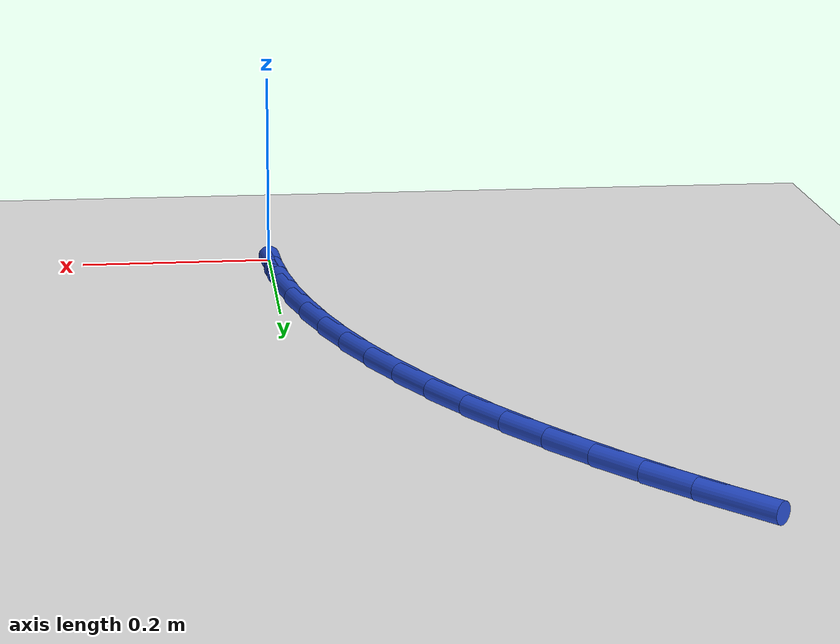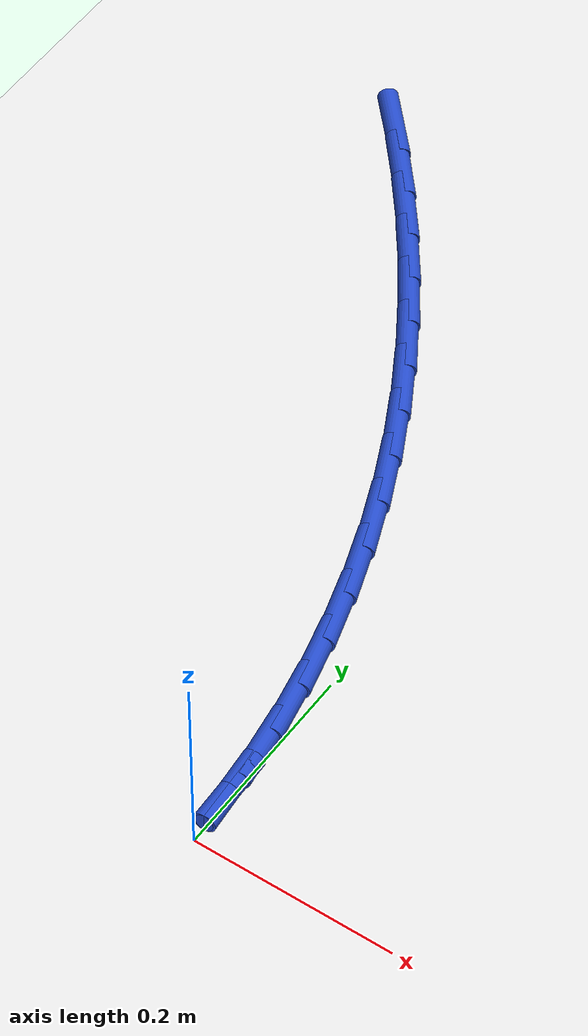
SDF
<sdf version="1.6">
 <world name="default">
  <model name="ground_plane">
   <static>1</static>
   <link name="link">
    <collision name="collision">
     <geometry><plane><normal>0 0 1</normal><size>100 100</size></plane></geometry>
     <surface><friction><ode><mu>100</mu><mu2>50</mu2></ode></friction></surface>
    </collision>
    <visual name="visual">
     <cast_shadows>0</cast_shadows>
     <geometry><plane><normal>0 0 1</normal><size>100 100</size></plane></geometry>
     <material>
      <script><uri>file://media/materials/scripts/gazebo.material</uri><name>Gazebo/WhiteGlow</name></script>
     </material>
    </visual>
   </link>
  </model>
  <model name="line">
   <link name="link_1">
    <pose>-0.0019127988193733663 0.053621195130851694 0.01 0 1.57 -1.4810969564794638</pose>
    <collision name="collision">
     <geometry><cylinder><radius>0.01</radius><length>0.08</length></cylinder></geometry>
    </collision>
    <visual name="visual">
     <material>
      <script><name>Gazebo/Blue</name><uri>file://media/materials/scripts/gazebo.material</uri></script>
     </material>
     <geometry><cylinder><radius>0.01</radius><length>0.08</length></cylinder></geometry>
    </visual>
   </link>
   <link name="link_2">
    <pose>-0.00672165869247289 0.1070881883489244 0.01 0 1.57 -1.4284923444065512</pose>
    <collision name="collision">
     <geometry><cylinder><radius>0.01</radius><length>0.08</length></cylinder></geometry>
    </collision>
    <visual name="visual">
     <material>
      <script><name>Gazebo/Blue</name><uri>file://media/materials/scripts/gazebo.material</uri></script>
     </material>
     <geometry><cylinder><radius>0.01</radius><length>0.08</length></cylinder></geometry>
    </visual>
   </link>
   <link name="link_3">
    <pose>-0.014341005209187739 0.16026902810462182 0.01 0 1.57 -1.377199438659335</pose>
    <collision name="collision">
     <geometry><cylinder><radius>0.01</radius><length>0.08</length></cylinder></geometry>
    </collision>
    <visual name="visual">
     <material>
      <script><name>Gazebo/Blue</name><uri>file://media/materials/scripts/gazebo.material</uri></script>
     </material>
     <geometry><cylinder><radius>0.01</radius><length>0.08</length></cylinder></geometry>
    </visual>
   </link>
   <link name="link_4">
    <pose>-0.024685263959407067 0.21303176284834768 0.01 0 1.57 -1.3270721663758944</pose>
    <collision name="collision">
     <geometry><cylinder><radius>0.01</radius><length>0.08</length></cylinder></geometry>
    </collision>
    <visual name="visual">
     <material>
      <script><name>Gazebo/Blue</name><uri>file://media/materials/scripts/gazebo.material</uri></script>
     </material>
     <geometry><cylinder><radius>0.01</radius><length>0.08</length></cylinder></geometry>
    </visual>
   </link>
   <link name="link_5">
    <pose>-0.03766886053302005 0.26524444103050576 0.01 0 1.57 -1.2779486032738683</pose>
    <collision name="collision">
     <geometry><cylinder><radius>0.01</radius><length>0.08</length></cylinder></geometry>
    </collision>
    <visual name="visual">
     <material>
      <script><name>Gazebo/Blue</name><uri>file://media/materials/scripts/gazebo.material</uri></script>
     </material>
     <geometry><cylinder><radius>0.01</radius><length>0.08</length></cylinder></geometry>
    </visual>
   </link>
   <link name="link_6">
    <pose>-0.05320622051991585 0.3167751111014999 0.01 0 1.57 -1.22965457174752</pose>
    <collision name="collision">
     <geometry><cylinder><radius>0.01</radius><length>0.08</length></cylinder></geometry>
    </collision>
    <visual name="visual">
     <material>
      <script><name>Gazebo/Blue</name><uri>file://media/materials/scripts/gazebo.material</uri></script>
     </material>
     <geometry><cylinder><radius>0.01</radius><length>0.08</length></cylinder></geometry>
    </visual>
   </link>
   <link name="link_7">
    <pose>-0.07121176950998365 0.367491821511734 0.01 0 1.57 -1.1820064087410085</pose>
    <collision name="collision">
     <geometry><cylinder><radius>0.01</radius><length>0.08</length></cylinder></geometry>
    </collision>
    <visual name="visual">
     <material>
      <script><name>Gazebo/Blue</name><uri>file://media/materials/scripts/gazebo.material</uri></script>
     </material>
     <geometry><cylinder><radius>0.01</radius><length>0.08</length></cylinder></geometry>
    </visual>
   </link>
   <link name="link_8">
    <pose>-0.09159993309311257 0.4172626207116117 0.01 0 1.57 -1.1348948468453819</pose>
    <collision name="collision">
     <geometry><cylinder><radius>0.01</radius><length>0.08</length></cylinder></geometry>
    </collision>
    <visual name="visual">
     <material>
      <script><name>Gazebo/Blue</name><uri>file://media/materials/scripts/gazebo.material</uri></script>
     </material>
     <geometry><cylinder><radius>0.01</radius><length>0.08</length></cylinder></geometry>
    </visual>
   </link>
   <link name="link_9">
    <pose>-0.11428325144515285 0.465961921098865 0.01 0 1.57 -1.0891571078992162</pose>
    <collision name="collision">
     <geometry><cylinder><radius>0.01</radius><length>0.08</length></cylinder></geometry>
    </collision>
    <visual name="visual">
     <material>
      <script><name>Gazebo/Blue</name><uri>file://media/materials/scripts/gazebo.material</uri></script>
     </material>
     <geometry><cylinder><radius>0.01</radius><length>0.08</length></cylinder></geometry>
    </visual>
   </link>
   <link name="link_10">
    <pose>-0.13915191184024098 0.5135395841164775 0.01 0 1.57 -1.04544608366425</pose>
    <collision name="collision">
     <geometry><cylinder><radius>0.01</radius><length>0.08</length></cylinder></geometry>
    </collision>
    <visual name="visual">
     <material>
      <script><name>Gazebo/Blue</name><uri>file://media/materials/scripts/gazebo.material</uri></script>
     </material>
     <geometry><cylinder><radius>0.01</radius><length>0.08</length></cylinder></geometry>
    </visual>
   </link>
   <link name="link_11">
    <pose>-0.1660814710647015 0.5599948543412692 0.01 0 1.57 -1.0037923445971124</pose>
    <collision name="collision">
     <geometry><cylinder><radius>0.01</radius><length>0.08</length></cylinder></geometry>
    </collision>
    <visual name="visual">
     <material>
      <script><name>Gazebo/Blue</name><uri>file://media/materials/scripts/gazebo.material</uri></script>
     </material>
     <geometry><cylinder><radius>0.01</radius><length>0.08</length></cylinder></geometry>
    </visual>
   </link>
   <link name="link_12">
    <pose>-0.19494723248706375 0.6053278317258375 0.01 0 1.57 -0.964185170395855</pose>
    <collision name="collision">
     <geometry><cylinder><radius>0.01</radius><length>0.08</length></cylinder></geometry>
    </collision>
    <visual name="visual">
     <material>
      <script><name>Gazebo/Blue</name><uri>file://media/materials/scripts/gazebo.material</uri></script>
     </material>
     <geometry><cylinder><radius>0.01</radius><length>0.08</length></cylinder></geometry>
    </visual>
   </link>
   <link name="link_13">
    <pose>-0.22562449947585717 0.6495386162227812 0.01 0 1.57 -0.9265892202288321</pose>
    <collision name="collision">
     <geometry><cylinder><radius>0.01</radius><length>0.08</length></cylinder></geometry>
    </collision>
    <visual name="visual">
     <material>
      <script><name>Gazebo/Blue</name><uri>file://media/materials/scripts/gazebo.material</uri></script>
     </material>
     <geometry><cylinder><radius>0.01</radius><length>0.08</length></cylinder></geometry>
    </visual>
   </link>
   <link name="link_14">
    <pose>-0.257988575399611 0.6926273077846979 0.01 0 1.57 -0.8909499251562601</pose>
    <collision name="collision">
     <geometry><cylinder><radius>0.01</radius><length>0.08</length></cylinder></geometry>
    </collision>
    <visual name="visual">
     <material>
      <script><name>Gazebo/Blue</name><uri>file://media/materials/scripts/gazebo.material</uri></script>
     </material>
     <geometry><cylinder><radius>0.01</radius><length>0.08</length></cylinder></geometry>
    </visual>
   </link>
   <link name="link_15">
    <pose>-0.2919147636268548 0.7345940063641859 0.01 0 1.57 -0.8571983679618527</pose>
    <collision name="collision">
     <geometry><cylinder><radius>0.01</radius><length>0.08</length></cylinder></geometry>
    </collision>
    <visual name="visual">
     <material>
      <script><name>Gazebo/Blue</name><uri>file://media/materials/scripts/gazebo.material</uri></script>
     </material>
     <geometry><cylinder><radius>0.01</radius><length>0.08</length></cylinder></geometry>
    </visual>
   </link>
   <link name="link_16">
    <pose>-0.327278367526118 0.775438811913843 0.01 0 1.57 -0.8252555261888134</pose>
    <collision name="collision">
     <geometry><cylinder><radius>0.01</radius><length>0.08</length></cylinder></geometry>
    </collision>
    <visual name="visual">
     <material>
      <script><name>Gazebo/Blue</name><uri>file://media/materials/scripts/gazebo.material</uri></script>
     </material>
     <geometry><cylinder><radius>0.01</radius><length>0.08</length></cylinder></geometry>
    </visual>
   </link>
   <link name="link_141">
    <pose>-0.0019287760701375695 0.05361852681559252 0.01 0 1.57 -1.5348396363495926</pose>
    <collision name="collision">
     <geometry><cylinder><radius>0.01</radius><length>0.08</length></cylinder></geometry>
    </collision>
    <visual name="visual">
     <material>
      <script><name>Gazebo/Blue</name><uri>file://media/materials/scripts/gazebo.material</uri></script>
     </material>
     <geometry><cylinder><radius>0.01</radius><length>0.08</length></cylinder></geometry>
    </visual>
   </link>
  </model>
 </world>
</sdf>
